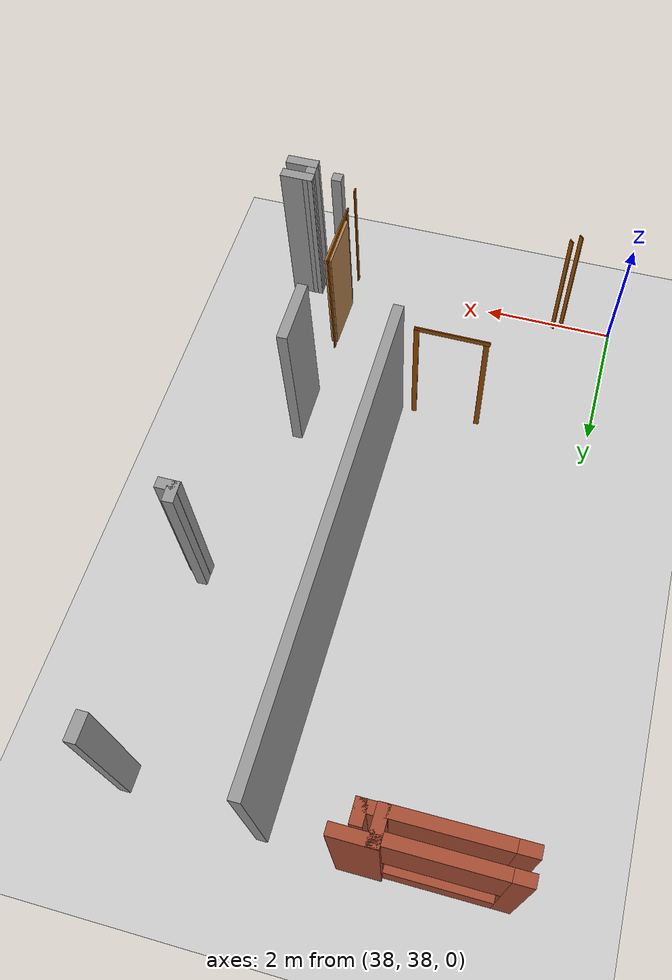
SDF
<sdf version="1.6">
 <world name="default">
  <model name="ground_plane">
   <static>1</static>
   <link name="link">
    <collision name="collision">
     <geometry><plane><normal>0 0 1</normal><size>100 100</size></plane></geometry>
     <surface><friction><ode><mu>100</mu><mu2>50</mu2></ode></friction></surface>
    </collision>
    <visual name="visual">
     <cast_shadows>0</cast_shadows>
     <geometry><plane><normal>0 0 1</normal><size>100 100</size></plane></geometry>
     <material>
      <script><uri>file://media/materials/scripts/gazebo.material</uri><name>Gazebo/Grey</name></script>
     </material>
    </visual>
   </link>
  </model>
  <model name="CVSSP">
   <pose>23.8714 24.094 0 0 -0 0</pose>
   <link name="Wall_269">
    <collision name="Wall_269_Collision">
     <geometry><box><size>0.587162 0.15 2.5</size></box></geometry>
     <pose>0 0 1.25 0 -0 0</pose>
    </collision>
    <visual name="Wall_269_Visual">
     <pose>0 0 1.25 0 -0 0</pose>
     <geometry><box><size>0.587162 0.15 2.5</size></box></geometry>
     <material>
      <script><uri>file://media/materials/scripts/gazebo.material</uri><name>Gazebo/Bricks</name></script>
      <ambient>1 1 1 1</ambient>
     </material>
    </visual>
    <pose>15.8178 22.8792 0 0 0 -3.14142</pose>
   </link>
   <link name="Wall_270">
    <collision name="Wall_270_Collision">
     <geometry><box><size>0.465577 0.15 2.5</size></box></geometry>
     <pose>0 0 1.25 0 -0 0</pose>
    </collision>
    <visual name="Wall_270_Visual">
     <pose>0 0 1.25 0 -0 0</pose>
     <geometry><box><size>0.465577 0.15 2.5</size></box></geometry>
     <material>
      <script><uri>file://media/materials/scripts/gazebo.material</uri><name>Gazebo/Bricks</name></script>
      <ambient>1 1 1 1</ambient>
     </material>
    </visual>
    <pose>15.5965 22.7138 0 0 0 -1.58788</pose>
   </link>
   <link name="Wall_271">
    <collision name="Wall_271_Collision">
     <geometry><box><size>0.381117 0.15 2.5</size></box></geometry>
     <pose>0 0 1.25 0 -0 0</pose>
    </collision>
    <visual name="Wall_271_Visual">
     <pose>0 0 1.25 0 -0 0</pose>
     <geometry><box><size>0.381117 0.15 2.5</size></box></geometry>
     <material>
      <script><uri>file://media/materials/scripts/gazebo.material</uri><name>Gazebo/Bricks</name></script>
      <ambient>1 1 1 1</ambient>
     </material>
    </visual>
    <pose>15.7094 22.5636 0 0 -0 0</pose>
   </link>
   <link name="Wall_272">
    <collision name="Wall_272_Collision">
     <geometry><box><size>0.294654 0.15 2.5</size></box></geometry>
     <pose>0 0 1.25 0 -0 0</pose>
    </collision>
    <visual name="Wall_272_Visual">
     <pose>0 0 1.25 0 -0 0</pose>
     <geometry><box><size>0.294654 0.15 2.5</size></box></geometry>
     <material>
      <script><uri>file://media/materials/scripts/gazebo.material</uri><name>Gazebo/Bricks</name></script>
      <ambient>1 1 1 1</ambient>
     </material>
    </visual>
    <pose>15.8249 22.6359 0 0 -0 1.5708</pose>
   </link>
   <link name="Wall_286">
    <pose>14.7864 22.5502 0 0 0 -3.13685</pose>
    <visual name="Wall_286_Visual_0">
     <pose>-0.813568 0 1.25 0 -0 0</pose>
     <geometry><box><size>0.118345 0.15 2.5</size></box></geometry>
     <material>
      <script><uri>file://media/materials/scripts/gazebo.material</uri><name>Gazebo/Bricks</name></script>
      <ambient>1 1 1 1</ambient>
     </material>
    </visual>
    <collision name="Wall_286_Collision_0">
     <geometry><box><size>0.118345 0.15 2.5</size></box></geometry>
     <pose>-0.813568 0 1.25 0 -0 0</pose>
    </collision>
    <visual name="Wall_286_Visual_1">
     <pose>0.059173 0 0.25 0 -0 0</pose>
     <geometry><box><size>1.62714 0.15 0.5</size></box></geometry>
     <material>
      <script><uri>file://media/materials/scripts/gazebo.material</uri><name>Gazebo/Bricks</name></script>
      <ambient>1 1 1 1</ambient>
     </material>
    </visual>
    <collision name="Wall_286_Collision_1">
     <geometry><box><size>1.62714 0.15 0.5</size></box></geometry>
     <pose>0.059173 0 0.25 0 -0 0</pose>
    </collision>
    <visual name="Wall_286_Visual_2">
     <pose>0.74556 0 1.5 0 -0 0</pose>
     <geometry><box><size>0.254362 0.15 2</size></box></geometry>
     <material>
      <script><uri>file://media/materials/scripts/gazebo.material</uri><name>Gazebo/Bricks</name></script>
      <ambient>1 1 1 1</ambient>
     </material>
    </visual>
    <collision name="Wall_286_Collision_2">
     <geometry><box><size>0.254362 0.15 2</size></box></geometry>
     <pose>0.74556 0 1.5 0 -0 0</pose>
    </collision>
    <visual name="Wall_286_Visual_3">
     <pose>-0.068008 0 1.9 0 -0 0</pose>
     <geometry><box><size>1.37277 0.15 1.2</size></box></geometry>
     <material>
      <script><uri>file://media/materials/scripts/gazebo.material</uri><name>Gazebo/Bricks</name></script>
      <ambient>1 1 1 1</ambient>
     </material>
    </visual>
    <collision name="Wall_286_Collision_3">
     <geometry><box><size>1.37277 0.15 1.2</size></box></geometry>
     <pose>-0.068008 0 1.9 0 -0 0</pose>
    </collision>
   </link>
   <link name="Wall_288">
    <pose>14.7864 22.8338 0 0 -0 0</pose>
    <visual name="Wall_288_Visual_0">
     <pose>-0.749362 0 1.25 0 -0 0</pose>
     <geometry><box><size>0.246758 0.15 2.5</size></box></geometry>
     <material>
      <script><uri>file://media/materials/scripts/gazebo.material</uri><name>Gazebo/Bricks</name></script>
      <ambient>1 1 1 1</ambient>
     </material>
    </visual>
    <collision name="Wall_288_Collision_0">
     <geometry><box><size>0.246758 0.15 2.5</size></box></geometry>
     <pose>-0.749362 0 1.25 0 -0 0</pose>
    </collision>
    <visual name="Wall_288_Visual_1">
     <pose>0.123379 0 0.25 0 -0 0</pose>
     <geometry><box><size>1.49872 0.15 0.5</size></box></geometry>
     <material>
      <script><uri>file://media/materials/scripts/gazebo.material</uri><name>Gazebo/Bricks</name></script>
      <ambient>1 1 1 1</ambient>
     </material>
    </visual>
    <collision name="Wall_288_Collision_1">
     <geometry><box><size>1.49872 0.15 0.5</size></box></geometry>
     <pose>0.123379 0 0.25 0 -0 0</pose>
    </collision>
    <visual name="Wall_288_Visual_2">
     <pose>0.806008 0 1.5 0 -0 0</pose>
     <geometry><box><size>0.133465 0.15 2</size></box></geometry>
     <material>
      <script><uri>file://media/materials/scripts/gazebo.material</uri><name>Gazebo/Bricks</name></script>
      <ambient>1 1 1 1</ambient>
     </material>
    </visual>
    <collision name="Wall_288_Collision_2">
     <geometry><box><size>0.133465 0.15 2</size></box></geometry>
     <pose>0.806008 0 1.5 0 -0 0</pose>
    </collision>
    <visual name="Wall_288_Visual_3">
     <pose>0.056646 0 1.9 0 -0 0</pose>
     <geometry><box><size>1.36526 0.15 1.2</size></box></geometry>
     <material>
      <script><uri>file://media/materials/scripts/gazebo.material</uri><name>Gazebo/Bricks</name></script>
      <ambient>1 1 1 1</ambient>
     </material>
    </visual>
    <collision name="Wall_288_Collision_3">
     <geometry><box><size>1.36526 0.15 1.2</size></box></geometry>
     <pose>0.056646 0 1.9 0 -0 0</pose>
    </collision>
   </link>
   <link name="Wall_339">
    <collision name="Wall_339_Collision">
     <geometry><box><size>6.75 0.15 2.5</size></box></geometry>
     <pose>0 0 1.25 0 -0 0</pose>
    </collision>
    <visual name="Wall_339_Visual">
     <pose>0 0 1.25 0 -0 0</pose>
     <geometry><box><size>6.75 0.15 2.5</size></box></geometry>
     <material>
      <script><uri>file://media/materials/scripts/gazebo.material</uri><name>Gazebo/Grey</name></script>
      <ambient>0.588235 0.588235 0.588235 1</ambient>
     </material>
    </visual>
    <pose>17.105 19.5007 0 0 -0 1.5708</pose>
   </link>
   <link name="Wall_342">
    <collision name="Wall_342_Collision">
     <geometry><box><size>0.94357 0.15 2.5</size></box></geometry>
     <pose>0 0 1.25 0 -0 0</pose>
    </collision>
    <visual name="Wall_342_Visual">
     <pose>0 0 1.25 0 -0 0</pose>
     <geometry><box><size>0.94357 0.15 2.5</size></box></geometry>
     <material>
      <script><uri>file://media/materials/scripts/gazebo.material</uri><name>Gazebo/Grey</name></script>
      <ambient>1 1 1 1</ambient>
     </material>
    </visual>
    <pose>18.469 16.5842 0 0 -0 1.57527</pose>
   </link>
   <link name="Wall_349">
    <collision name="Wall_349_Collision">
     <geometry><box><size>0.360405 0.15 2.5</size></box></geometry>
     <pose>0 0 1.25 0 -0 0</pose>
    </collision>
    <visual name="Wall_349_Visual">
     <pose>0 0 1.25 0 -0 0</pose>
     <geometry><box><size>0.360405 0.15 2.5</size></box></geometry>
     <material>
      <script><uri>file://media/materials/scripts/gazebo.material</uri><name>Gazebo/Grey</name></script>
      <ambient>1 1 1 1</ambient>
     </material>
    </visual>
    <pose>19.0038 22.5658 0 0 -0 1.5708</pose>
   </link>
   <link name="Wall_534">
    <collision name="Wall_534_Collision">
     <geometry><box><size>0.15 0.15 2.5</size></box></geometry>
     <pose>0 0 1.25 0 -0 0</pose>
    </collision>
    <visual name="Wall_534_Visual">
     <pose>0 0 1.25 0 -0 0</pose>
     <geometry><box><size>0.15 0.15 2.5</size></box></geometry>
     <material>
      <script><uri>file://media/materials/scripts/gazebo.material</uri><name>Gazebo/Grey</name></script>
      <ambient>1 1 1 1</ambient>
     </material>
    </visual>
    <pose>18.5786 14.0544 0 0 -0 0</pose>
   </link>
   <link name="Wall_535">
    <collision name="Wall_535_Collision">
     <geometry><box><size>0.15 0.15 2.5</size></box></geometry>
     <pose>0 0 1.25 0 -0 0</pose>
    </collision>
    <visual name="Wall_535_Visual">
     <pose>0 0 1.25 0 -0 0</pose>
     <geometry><box><size>0.15 0.15 2.5</size></box></geometry>
     <material>
      <script><uri>file://media/materials/scripts/gazebo.material</uri><name>Gazebo/Grey</name></script>
      <ambient>1 1 1 1</ambient>
     </material>
    </visual>
    <pose>18.5786 14.0544 0 0 -0 0</pose>
   </link>
   <link name="Wall_665">
    <collision name="Wall_665_Collision">
     <geometry><box><size>0.303096 0.15 2.5</size></box></geometry>
     <pose>0 0 1.25 0 -0 0</pose>
    </collision>
    <visual name="Wall_665_Visual">
     <pose>0 0 1.25 0 -0 0</pose>
     <geometry><box><size>0.303096 0.15 2.5</size></box></geometry>
     <material>
      <script><uri>file://media/materials/scripts/gazebo.material</uri><name>Gazebo/Grey</name></script>
      <ambient>1 1 1 1</ambient>
     </material>
    </visual>
    <pose>19.0523 19.6004 0 0 0 -1.52734</pose>
   </link>
   <link name="Wall_666">
    <collision name="Wall_666_Collision">
     <geometry><box><size>0.3032 0.15 2.5</size></box></geometry>
     <pose>0 0 1.25 0 -0 0</pose>
    </collision>
    <visual name="Wall_666_Visual">
     <pose>0 0 1.25 0 -0 0</pose>
     <geometry><box><size>0.3032 0.15 2.5</size></box></geometry>
     <material>
      <script><uri>file://media/materials/scripts/gazebo.material</uri><name>Gazebo/Grey</name></script>
      <ambient>1 1 1 1</ambient>
     </material>
    </visual>
    <pose>19.1255 19.5239 0 0 -0 0</pose>
   </link>
   <link name="Wall_673">
    <collision name="Wall_673_Collision">
     <geometry><box><size>0.486902 0.15 2.5</size></box></geometry>
     <pose>0 0 1.25 0 -0 0</pose>
    </collision>
    <visual name="Wall_673_Visual">
     <pose>0 0 1.25 0 -0 0</pose>
     <geometry><box><size>0.486902 0.15 2.5</size></box></geometry>
     <material>
      <script><uri>file://media/materials/scripts/gazebo.material</uri><name>Gazebo/Grey</name></script>
      <ambient>1 1 1 1</ambient>
     </material>
    </visual>
    <pose>19.1589 14.1574 0 0 -0 0</pose>
   </link>
   <link name="Wall_675">
    <collision name="Wall_675_Collision">
     <geometry><box><size>0.476846 0.15 2.5</size></box></geometry>
     <pose>0 0 1.25 0 -0 0</pose>
    </collision>
    <visual name="Wall_675_Visual">
     <pose>0 0 1.25 0 -0 0</pose>
     <geometry><box><size>0.476846 0.15 2.5</size></box></geometry>
     <material>
      <script><uri>file://media/materials/scripts/gazebo.material</uri><name>Gazebo/Grey</name></script>
      <ambient>1 1 1 1</ambient>
     </material>
    </visual>
    <pose>19.1639 13.8808 0 0 -0 3.14159</pose>
   </link>
   <link name="Wall_676">
    <collision name="Wall_676_Collision">
     <geometry><box><size>0.426744 0.15 2.5</size></box></geometry>
     <pose>0 0 1.25 0 -0 0</pose>
    </collision>
    <visual name="Wall_676_Visual">
     <pose>0 0 1.25 0 -0 0</pose>
     <geometry><box><size>0.426744 0.15 2.5</size></box></geometry>
     <material>
      <script><uri>file://media/materials/scripts/gazebo.material</uri><name>Gazebo/Grey</name></script>
      <ambient>1 1 1 1</ambient>
     </material>
    </visual>
    <pose>18.9954 14.0191 0 0 -0 1.60714</pose>
   </link>
   <static>1</static>
  </model>
  <model name="basic_ply_door_smaller">
   <link name="link">
    <pose>0 1e-06 1.00385 0 -0 0</pose>
    <inertial>
     <mass>0.5167</mass>
     <inertia>
      <ixx>0.00086117</ixx>
      <ixy>0</ixy>
      <ixz>0</ixz>
      <iyy>0.00086117</iyy>
      <iyz>0</iyz>
      <izz>0.00086117</izz>
     </inertia>
    </inertial>
    <gravity>0</gravity>
    <visual name="visual">
     <geometry><box><size>0.83 0.1 1.91</size></box></geometry>
     <material>
      <script><uri>file://media/materials/scripts/gazebo.material</uri><name>Gazebo/Wood</name></script>
      <shader type="pixel"><normal_map>__default__</normal_map></shader>
      <ambient>1 1 1 1</ambient>
      <diffuse>1 1 1 1</diffuse>
      <specular>0.2 0.2 0.2 1</specular>
      <emissive>0 0 0 1</emissive>
     </material>
    </visual>
    <collision name="collision">
     <geometry><box><size>0.83 0.1 1.91</size></box></geometry>
     <surface>
      <friction>
       <ode><mu>1</mu><mu2>1</mu2><fdir1>0 0 0</fdir1><slip1>0</slip1><slip2>0</slip2></ode>
       <torsional>
        <coefficient>1</coefficient>
        <patch_radius>0</patch_radius>
        <surface_radius>0.01</surface_radius>
        <use_patch_radius>0</use_patch_radius>
        <ode><slip>0</slip></ode>
       </torsional>
      </friction>
      <bounce><restitution_coefficient>0</restitution_coefficient><threshold>1e+06</threshold></bounce>
      <contact>
       <collide_without_contact>0</collide_without_contact>
       <collide_without_contact_bitmask>1</collide_without_contact_bitmask>
       <collide_bitmask>1</collide_bitmask>
       <ode>
        <soft_cfm>0</soft_cfm>
        <soft_erp>0.2</soft_erp>
        <kp>100000</kp>
        <kd>100</kd>
        <max_vel>100</max_vel>
        <min_depth>0.001</min_depth>
       </ode>
       <bullet>
        <split_impulse>1</split_impulse>
        <split_impulse_penetration_threshold>-0.01</split_impulse_penetration_threshold>
        <soft_cfm>0</soft_cfm>
        <soft_erp>0.2</soft_erp>
        <kp>100000</kp>
        <kd>100</kd>
       </bullet>
      </contact>
     </surface>
    </collision>
   </link>
   <static>1</static>
   <pose>42.2836 38.8513 -0.001108 0.000587 0.002065 1.54877</pose>
  </model>
  <model name="oak_frame_0_clone_clone_8">
   <link name="link">
    <inertial>
     <mass>1</mass>
     <inertia>
      <ixx>0.166667</ixx>
      <ixy>0</ixy>
      <ixz>0</ixz>
      <iyy>0.166667</iyy>
      <iyz>0</iyz>
      <izz>0.166667</izz>
     </inertia>
    </inertial>
    <visual name="visual">
     <geometry><box><size>0.018685 0.076446 2.026</size></box></geometry>
     <material>
      <script><name>Gazebo/Grey</name><uri>file://media/materials/scripts/gazebo.material</uri></script>
      <shader type="pixel"><normal_map>__default__</normal_map></shader>
      <diffuse>0.58 0.29 0 0</diffuse>
      <ambient>0.58 0.29 0 1</ambient>
      <specular>0.01 0.01 0.01 1</specular>
      <emissive>0 0 0 1</emissive>
     </material>
    </visual>
    <collision name="collision">
     <geometry><box><size>0.018685 0.076446 2.026</size></box></geometry>
     <surface>
      <friction>
       <ode><mu>1</mu><mu2>1</mu2><fdir1>0 0 0</fdir1><slip1>0</slip1><slip2>0</slip2></ode>
       <torsional>
        <coefficient>1</coefficient>
        <patch_radius>0</patch_radius>
        <surface_radius>0</surface_radius>
        <use_patch_radius>1</use_patch_radius>
        <ode><slip>0</slip></ode>
       </torsional>
      </friction>
      <bounce><restitution_coefficient>0</restitution_coefficient><threshold>1e+06</threshold></bounce>
      <contact>
       <collide_without_contact>0</collide_without_contact>
       <collide_without_contact_bitmask>1</collide_without_contact_bitmask>
       <collide_bitmask>1</collide_bitmask>
       <ode>
        <soft_cfm>0</soft_cfm>
        <soft_erp>0.2</soft_erp>
        <kp>1e+13</kp>
        <kd>1</kd>
        <max_vel>0.01</max_vel>
        <min_depth>0</min_depth>
       </ode>
       <bullet>
        <split_impulse>1</split_impulse>
        <split_impulse_penetration_threshold>-0.01</split_impulse_penetration_threshold>
        <soft_cfm>0</soft_cfm>
        <soft_erp>0.2</soft_erp>
        <kp>1e+13</kp>
        <kd>1</kd>
       </bullet>
      </contact>
     </surface>
    </collision>
   </link>
   <static>1</static>
   <pose>42.2734 37.8904 1.03242 0 -0 0</pose>
  </model>
  <model name="oak_frame_0_clone_clone_9">
   <link name="link">
    <inertial>
     <mass>1</mass>
     <inertia>
      <ixx>0.166667</ixx>
      <ixy>0</ixy>
      <ixz>0</ixz>
      <iyy>0.166667</iyy>
      <iyz>0</iyz>
      <izz>0.166667</izz>
     </inertia>
    </inertial>
    <visual name="visual">
     <geometry><box><size>0.018685 0.076446 2.026</size></box></geometry>
     <material>
      <script><name>Gazebo/Grey</name><uri>file://media/materials/scripts/gazebo.material</uri></script>
      <shader type="pixel"><normal_map>__default__</normal_map></shader>
      <diffuse>0.58 0.29 0 0</diffuse>
      <ambient>0.58 0.29 0 1</ambient>
      <specular>0.01 0.01 0.01 1</specular>
      <emissive>0 0 0 1</emissive>
     </material>
    </visual>
    <collision name="collision">
     <geometry><box><size>0.018685 0.076446 2.026</size></box></geometry>
     <surface>
      <friction>
       <ode><mu>1</mu><mu2>1</mu2><fdir1>0 0 0</fdir1><slip1>0</slip1><slip2>0</slip2></ode>
       <torsional>
        <coefficient>1</coefficient>
        <patch_radius>0</patch_radius>
        <surface_radius>0</surface_radius>
        <use_patch_radius>1</use_patch_radius>
        <ode><slip>0</slip></ode>
       </torsional>
      </friction>
      <bounce><restitution_coefficient>0</restitution_coefficient><threshold>1e+06</threshold></bounce>
      <contact>
       <collide_without_contact>0</collide_without_contact>
       <collide_without_contact_bitmask>1</collide_without_contact_bitmask>
       <collide_bitmask>1</collide_bitmask>
       <ode>
        <soft_cfm>0</soft_cfm>
        <soft_erp>0.2</soft_erp>
        <kp>1e+13</kp>
        <kd>1</kd>
        <max_vel>0.01</max_vel>
        <min_depth>0</min_depth>
       </ode>
       <bullet>
        <split_impulse>1</split_impulse>
        <split_impulse_penetration_threshold>-0.01</split_impulse_penetration_threshold>
        <soft_cfm>0</soft_cfm>
        <soft_erp>0.2</soft_erp>
        <kp>1e+13</kp>
        <kd>1</kd>
       </bullet>
      </contact>
     </surface>
    </collision>
   </link>
   <static>1</static>
   <pose>42.2621 38.3606 1.03242 0 -0 0</pose>
  </model>
  <model name="oak_frame_0_clone_clone_10">
   <link name="link">
    <inertial>
     <mass>1</mass>
     <inertia>
      <ixx>0.166667</ixx>
      <ixy>0</ixy>
      <ixz>0</ixz>
      <iyy>0.166667</iyy>
      <iyz>0</iyz>
      <izz>0.166667</izz>
     </inertia>
    </inertial>
    <visual name="visual">
     <geometry><box><size>0.018685 0.076446 2.026</size></box></geometry>
     <material>
      <script><name>Gazebo/Grey</name><uri>file://media/materials/scripts/gazebo.material</uri></script>
      <shader type="pixel"><normal_map>__default__</normal_map></shader>
      <diffuse>0.58 0.29 0 0</diffuse>
      <ambient>0.58 0.29 0 1</ambient>
      <specular>0.01 0.01 0.01 1</specular>
      <emissive>0 0 0 1</emissive>
     </material>
    </visual>
    <collision name="collision">
     <geometry><box><size>0.018685 0.076446 2.026</size></box></geometry>
     <surface>
      <friction>
       <ode><mu>1</mu><mu2>1</mu2><fdir1>0 0 0</fdir1><slip1>0</slip1><slip2>0</slip2></ode>
       <torsional>
        <coefficient>1</coefficient>
        <patch_radius>0</patch_radius>
        <surface_radius>0</surface_radius>
        <use_patch_radius>1</use_patch_radius>
        <ode><slip>0</slip></ode>
       </torsional>
      </friction>
      <bounce><restitution_coefficient>0</restitution_coefficient><threshold>1e+06</threshold></bounce>
      <contact>
       <collide_without_contact>0</collide_without_contact>
       <collide_without_contact_bitmask>1</collide_without_contact_bitmask>
       <collide_bitmask>1</collide_bitmask>
       <ode>
        <soft_cfm>0</soft_cfm>
        <soft_erp>0.2</soft_erp>
        <kp>1e+13</kp>
        <kd>1</kd>
        <max_vel>0.01</max_vel>
        <min_depth>0</min_depth>
       </ode>
       <bullet>
        <split_impulse>1</split_impulse>
        <split_impulse_penetration_threshold>-0.01</split_impulse_penetration_threshold>
        <soft_cfm>0</soft_cfm>
        <soft_erp>0.2</soft_erp>
        <kp>1e+13</kp>
        <kd>1</kd>
       </bullet>
      </contact>
     </surface>
    </collision>
   </link>
   <static>1</static>
   <pose>42.2641 39.3371 1.03242 0 -0 0</pose>
  </model>
  <model name="oak_frame_0_clone_0_clone_7">
   <link name="link">
    <inertial>
     <mass>1</mass>
     <inertia>
      <ixx>0.166667</ixx>
      <ixy>0</ixy>
      <ixz>0</ixz>
      <iyy>0.166667</iyy>
      <iyz>0</iyz>
      <izz>0.166667</izz>
     </inertia>
    </inertial>
    <visual name="visual">
     <geometry><box><size>0.018685 0.076446 1.08038</size></box></geometry>
     <material>
      <script><name>Gazebo/Grey</name><uri>file://media/materials/scripts/gazebo.material</uri></script>
      <shader type="pixel"><normal_map>__default__</normal_map></shader>
      <diffuse>0.58 0.29 0 0</diffuse>
      <ambient>0.58 0.29 0 1</ambient>
      <specular>0.01 0.01 0.01 1</specular>
      <emissive>0 0 0 1</emissive>
     </material>
    </visual>
    <collision name="collision">
     <geometry><box><size>0.018685 0.076446 1.08038</size></box></geometry>
     <surface>
      <friction>
       <ode><mu>1</mu><mu2>1</mu2><fdir1>0 0 0</fdir1><slip1>0</slip1><slip2>0</slip2></ode>
       <torsional>
        <coefficient>1</coefficient>
        <patch_radius>0</patch_radius>
        <surface_radius>0</surface_radius>
        <use_patch_radius>1</use_patch_radius>
        <ode><slip>0</slip></ode>
       </torsional>
      </friction>
      <bounce><restitution_coefficient>0</restitution_coefficient><threshold>1e+06</threshold></bounce>
      <contact>
       <collide_without_contact>0</collide_without_contact>
       <collide_without_contact_bitmask>1</collide_without_contact_bitmask>
       <collide_bitmask>1</collide_bitmask>
       <ode>
        <soft_cfm>0</soft_cfm>
        <soft_erp>0.2</soft_erp>
        <kp>1e+13</kp>
        <kd>1</kd>
        <max_vel>0.01</max_vel>
        <min_depth>0</min_depth>
       </ode>
       <bullet>
        <split_impulse>1</split_impulse>
        <split_impulse_penetration_threshold>-0.01</split_impulse_penetration_threshold>
        <soft_cfm>0</soft_cfm>
        <soft_erp>0.2</soft_erp>
        <kp>1e+13</kp>
        <kd>1</kd>
       </bullet>
      </contact>
     </surface>
    </collision>
   </link>
   <static>1</static>
   <pose>42.2637 38.8395 2.05002 -1.55236 0 0</pose>
  </model>
  <model name="oak_frame_0_clone_clone_7_clone_clone_0">
   <link name="link">
    <inertial>
     <mass>1</mass>
     <inertia>
      <ixx>0.166667</ixx>
      <ixy>0</ixy>
      <ixz>0</ixz>
      <iyy>0.166667</iyy>
      <iyz>0</iyz>
      <izz>0.166667</izz>
     </inertia>
    </inertial>
    <visual name="visual">
     <geometry><box><size>0.018685 0.076446 2.026</size></box></geometry>
     <material>
      <script><name>Gazebo/Grey</name><uri>file://media/materials/scripts/gazebo.material</uri></script>
      <shader type="pixel"><normal_map>__default__</normal_map></shader>
      <diffuse>0.58 0.29 0 0</diffuse>
      <ambient>0.58 0.29 0 1</ambient>
      <specular>0.01 0.01 0.01 1</specular>
      <emissive>0 0 0 1</emissive>
     </material>
    </visual>
    <collision name="collision">
     <geometry><box><size>0.018685 0.076446 2.026</size></box></geometry>
     <surface>
      <friction>
       <ode><mu>1</mu><mu2>1</mu2><fdir1>0 0 0</fdir1><slip1>0</slip1><slip2>0</slip2></ode>
       <torsional>
        <coefficient>1</coefficient>
        <patch_radius>0</patch_radius>
        <surface_radius>0</surface_radius>
        <use_patch_radius>1</use_patch_radius>
        <ode><slip>0</slip></ode>
       </torsional>
      </friction>
      <bounce><restitution_coefficient>0</restitution_coefficient><threshold>1e+06</threshold></bounce>
      <contact>
       <collide_without_contact>0</collide_without_contact>
       <collide_without_contact_bitmask>1</collide_without_contact_bitmask>
       <collide_bitmask>1</collide_bitmask>
       <ode>
        <soft_cfm>0</soft_cfm>
        <soft_erp>0.2</soft_erp>
        <kp>1e+13</kp>
        <kd>1</kd>
        <max_vel>0.01</max_vel>
        <min_depth>0</min_depth>
       </ode>
       <bullet>
        <split_impulse>1</split_impulse>
        <split_impulse_penetration_threshold>-0.01</split_impulse_penetration_threshold>
        <soft_cfm>0</soft_cfm>
        <soft_erp>0.2</soft_erp>
        <kp>1e+13</kp>
        <kd>1</kd>
       </bullet>
      </contact>
     </surface>
    </collision>
   </link>
   <static>1</static>
   <pose>38.9132 38.0588 1.03242 0 -0 0.782752</pose>
  </model>
  <model name="oak_frame_0_clone_clone_7_clone_clone_2">
   <link name="link">
    <inertial>
     <mass>1</mass>
     <inertia>
      <ixx>0.166667</ixx>
      <ixy>0</ixy>
      <ixz>0</ixz>
      <iyy>0.166667</iyy>
      <iyz>0</iyz>
      <izz>0.166667</izz>
     </inertia>
    </inertial>
    <visual name="visual">
     <geometry><box><size>0.018685 0.076446 2.026</size></box></geometry>
     <material>
      <script><name>Gazebo/Grey</name><uri>file://media/materials/scripts/gazebo.material</uri></script>
      <shader type="pixel"><normal_map>__default__</normal_map></shader>
      <diffuse>0.58 0.29 0 0</diffuse>
      <ambient>0.58 0.29 0 1</ambient>
      <specular>0.01 0.01 0.01 1</specular>
      <emissive>0 0 0 1</emissive>
     </material>
    </visual>
    <collision name="collision">
     <geometry><box><size>0.018685 0.076446 2.026</size></box></geometry>
     <surface>
      <friction>
       <ode><mu>1</mu><mu2>1</mu2><fdir1>0 0 0</fdir1><slip1>0</slip1><slip2>0</slip2></ode>
       <torsional>
        <coefficient>1</coefficient>
        <patch_radius>0</patch_radius>
        <surface_radius>0</surface_radius>
        <use_patch_radius>1</use_patch_radius>
        <ode><slip>0</slip></ode>
       </torsional>
      </friction>
      <bounce><restitution_coefficient>0</restitution_coefficient><threshold>1e+06</threshold></bounce>
      <contact>
       <collide_without_contact>0</collide_without_contact>
       <collide_without_contact_bitmask>1</collide_without_contact_bitmask>
       <collide_bitmask>1</collide_bitmask>
       <ode>
        <soft_cfm>0</soft_cfm>
        <soft_erp>0.2</soft_erp>
        <kp>1e+13</kp>
        <kd>1</kd>
        <max_vel>0.01</max_vel>
        <min_depth>0</min_depth>
       </ode>
       <bullet>
        <split_impulse>1</split_impulse>
        <split_impulse_penetration_threshold>-0.01</split_impulse_penetration_threshold>
        <soft_cfm>0</soft_cfm>
        <soft_erp>0.2</soft_erp>
        <kp>1e+13</kp>
        <kd>1</kd>
       </bullet>
      </contact>
     </surface>
    </collision>
   </link>
   <static>1</static>
   <pose>38.7874 37.94 1.03242 0 -0 0.79165</pose>
  </model>
  <model name="oak_frame_0_clone_clone_10_clone_clone">
   <link name="link">
    <inertial>
     <mass>1</mass>
     <inertia>
      <ixx>0.166667</ixx>
      <ixy>0</ixy>
      <ixz>0</ixz>
      <iyy>0.166667</iyy>
      <iyz>0</iyz>
      <izz>0.166667</izz>
     </inertia>
    </inertial>
    <visual name="visual">
     <geometry><box><size>0.018685 0.076446 2.026</size></box></geometry>
     <material>
      <script><name>Gazebo/Grey</name><uri>file://media/materials/scripts/gazebo.material</uri></script>
      <shader type="pixel"><normal_map>__default__</normal_map></shader>
      <diffuse>0.58 0.29 0 0</diffuse>
      <ambient>0.58 0.29 0 1</ambient>
      <specular>0.01 0.01 0.01 1</specular>
      <emissive>0 0 0 1</emissive>
     </material>
    </visual>
    <collision name="collision">
     <geometry><box><size>0.018685 0.076446 2.026</size></box></geometry>
     <surface>
      <friction>
       <ode><mu>1</mu><mu2>1</mu2><fdir1>0 0 0</fdir1><slip1>0</slip1><slip2>0</slip2></ode>
       <torsional>
        <coefficient>1</coefficient>
        <patch_radius>0</patch_radius>
        <surface_radius>0</surface_radius>
        <use_patch_radius>1</use_patch_radius>
        <ode><slip>0</slip></ode>
       </torsional>
      </friction>
      <bounce><restitution_coefficient>0</restitution_coefficient><threshold>1e+06</threshold></bounce>
      <contact>
       <collide_without_contact>0</collide_without_contact>
       <collide_without_contact_bitmask>1</collide_without_contact_bitmask>
       <collide_bitmask>1</collide_bitmask>
       <ode>
        <soft_cfm>0</soft_cfm>
        <soft_erp>0.2</soft_erp>
        <kp>1e+13</kp>
        <kd>1</kd>
        <max_vel>0.01</max_vel>
        <min_depth>0</min_depth>
       </ode>
       <bullet>
        <split_impulse>1</split_impulse>
        <split_impulse_penetration_threshold>-0.01</split_impulse_penetration_threshold>
        <soft_cfm>0</soft_cfm>
        <soft_erp>0.2</soft_erp>
        <kp>1e+13</kp>
        <kd>1</kd>
       </bullet>
      </contact>
     </surface>
    </collision>
   </link>
   <static>1</static>
   <pose>40.7191 40.215 1.03242 0 0 -1.56774</pose>
  </model>
  <model name="oak_frame_0_clone_0_clone_8_clone_0_clone_0_clone_clone">
   <link name="link">
    <inertial>
     <mass>1</mass>
     <inertia>
      <ixx>0.166667</ixx>
      <ixy>0</ixy>
      <ixz>0</ixz>
      <iyy>0.166667</iyy>
      <iyz>0</iyz>
      <izz>0.166667</izz>
     </inertia>
    </inertial>
    <visual name="visual">
     <geometry><box><size>0.018685 0.076446 1.08038</size></box></geometry>
     <material>
      <script><name>Gazebo/Grey</name><uri>file://media/materials/scripts/gazebo.material</uri></script>
      <shader type="pixel"><normal_map>__default__</normal_map></shader>
      <diffuse>0.58 0.29 0 0</diffuse>
      <ambient>0.58 0.29 0 1</ambient>
      <specular>0.01 0.01 0.01 1</specular>
      <emissive>0 0 0 1</emissive>
     </material>
    </visual>
    <collision name="collision">
     <geometry><box><size>0.018685 0.076446 1.08038</size></box></geometry>
     <surface>
      <friction>
       <ode><mu>1</mu><mu2>1</mu2><fdir1>0 0 0</fdir1><slip1>0</slip1><slip2>0</slip2></ode>
       <torsional>
        <coefficient>1</coefficient>
        <patch_radius>0</patch_radius>
        <surface_radius>0</surface_radius>
        <use_patch_radius>1</use_patch_radius>
        <ode><slip>0</slip></ode>
       </torsional>
      </friction>
      <bounce><restitution_coefficient>0</restitution_coefficient><threshold>1e+06</threshold></bounce>
      <contact>
       <collide_without_contact>0</collide_without_contact>
       <collide_without_contact_bitmask>1</collide_without_contact_bitmask>
       <collide_bitmask>1</collide_bitmask>
       <ode>
        <soft_cfm>0</soft_cfm>
        <soft_erp>0.2</soft_erp>
        <kp>1e+13</kp>
        <kd>1</kd>
        <max_vel>0.01</max_vel>
        <min_depth>0</min_depth>
       </ode>
       <bullet>
        <split_impulse>1</split_impulse>
        <split_impulse_penetration_threshold>-0.01</split_impulse_penetration_threshold>
        <soft_cfm>0</soft_cfm>
        <soft_erp>0.2</soft_erp>
        <kp>1e+13</kp>
        <kd>1</kd>
       </bullet>
      </contact>
     </surface>
    </collision>
   </link>
   <static>1</static>
   <pose>40.2105 40.2096 2.05052 -1.57088 0.018437 -1.57501</pose>
  </model>
  <model name="oak_frame_0_clone_clone_10_clone_clone_clone">
   <link name="link">
    <inertial>
     <mass>1</mass>
     <inertia>
      <ixx>0.166667</ixx>
      <ixy>0</ixy>
      <ixz>0</ixz>
      <iyy>0.166667</iyy>
      <iyz>0</iyz>
      <izz>0.166667</izz>
     </inertia>
    </inertial>
    <visual name="visual">
     <geometry><box><size>0.018685 0.076446 2.026</size></box></geometry>
     <material>
      <script><name>Gazebo/Grey</name><uri>file://media/materials/scripts/gazebo.material</uri></script>
      <shader type="pixel"><normal_map>__default__</normal_map></shader>
      <diffuse>0.58 0.29 0 0</diffuse>
      <ambient>0.58 0.29 0 1</ambient>
      <specular>0.01 0.01 0.01 1</specular>
      <emissive>0 0 0 1</emissive>
     </material>
    </visual>
    <collision name="collision">
     <geometry><box><size>0.018685 0.076446 2.026</size></box></geometry>
     <surface>
      <friction>
       <ode><mu>1</mu><mu2>1</mu2><fdir1>0 0 0</fdir1><slip1>0</slip1><slip2>0</slip2></ode>
       <torsional>
        <coefficient>1</coefficient>
        <patch_radius>0</patch_radius>
        <surface_radius>0</surface_radius>
        <use_patch_radius>1</use_patch_radius>
        <ode><slip>0</slip></ode>
       </torsional>
      </friction>
      <bounce><restitution_coefficient>0</restitution_coefficient><threshold>1e+06</threshold></bounce>
      <contact>
       <collide_without_contact>0</collide_without_contact>
       <collide_without_contact_bitmask>1</collide_without_contact_bitmask>
       <collide_bitmask>1</collide_bitmask>
       <ode>
        <soft_cfm>0</soft_cfm>
        <soft_erp>0.2</soft_erp>
        <kp>1e+13</kp>
        <kd>1</kd>
        <max_vel>0.01</max_vel>
        <min_depth>0</min_depth>
       </ode>
       <bullet>
        <split_impulse>1</split_impulse>
        <split_impulse_penetration_threshold>-0.01</split_impulse_penetration_threshold>
        <soft_cfm>0</soft_cfm>
        <soft_erp>0.2</soft_erp>
        <kp>1e+13</kp>
        <kd>1</kd>
       </bullet>
      </contact>
     </surface>
    </collision>
   </link>
   <static>1</static>
   <pose>39.724 40.2066 1.03242 0 0 -1.56774</pose>
  </model>
 </world>
</sdf>
